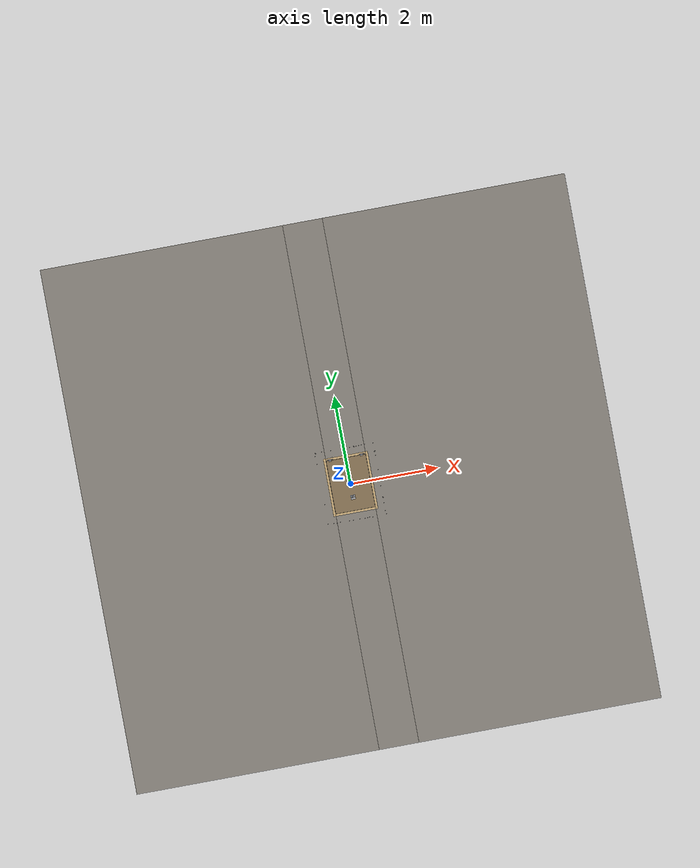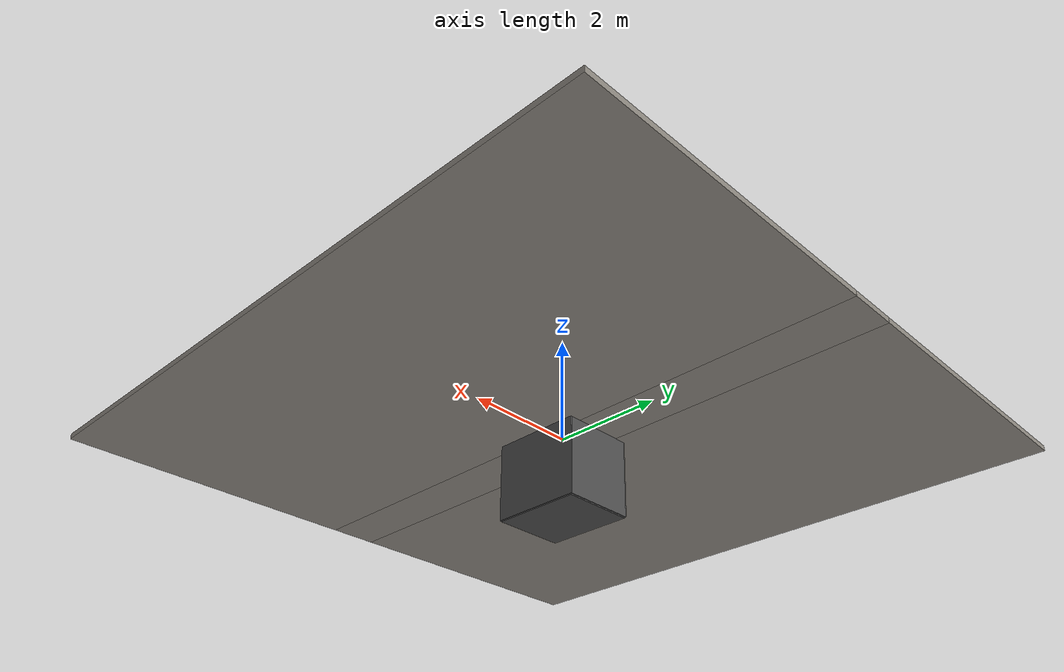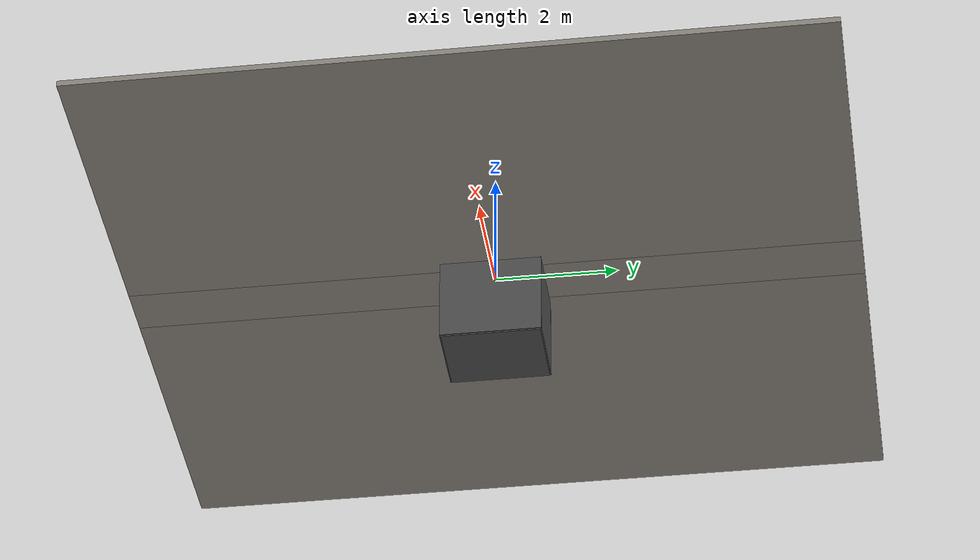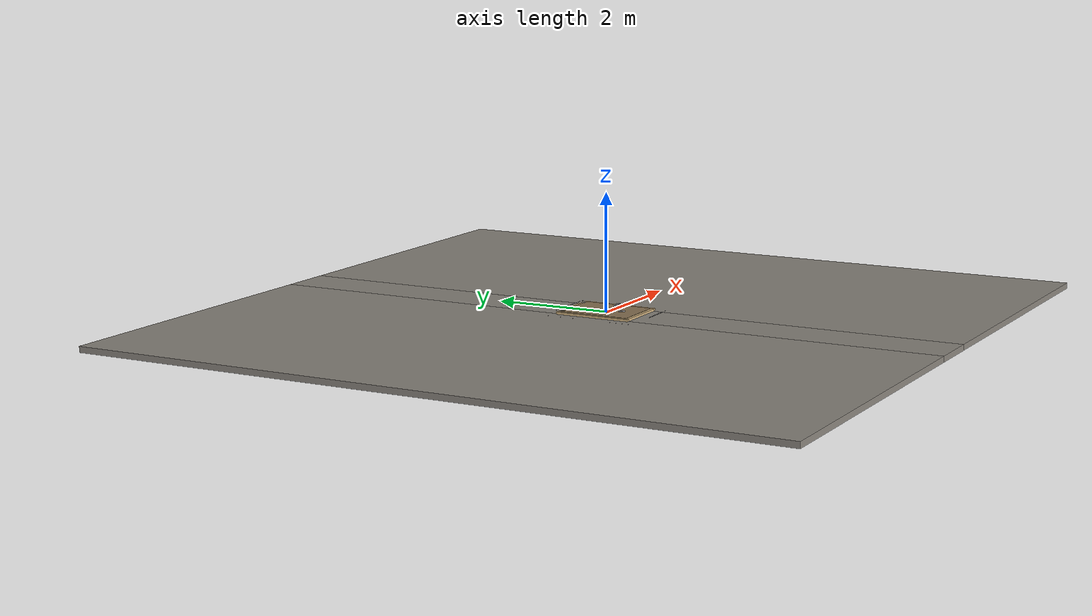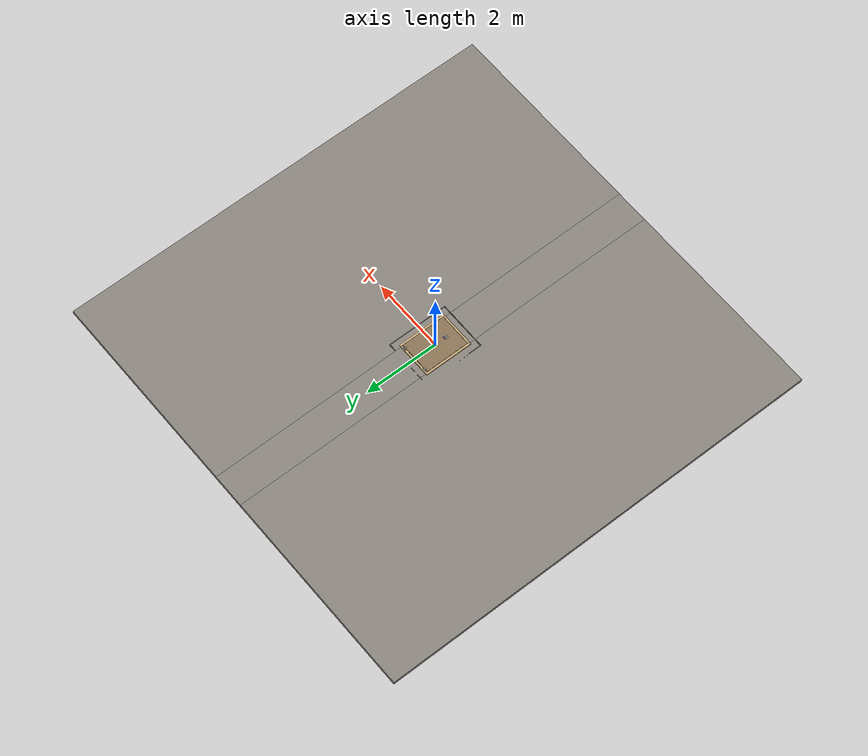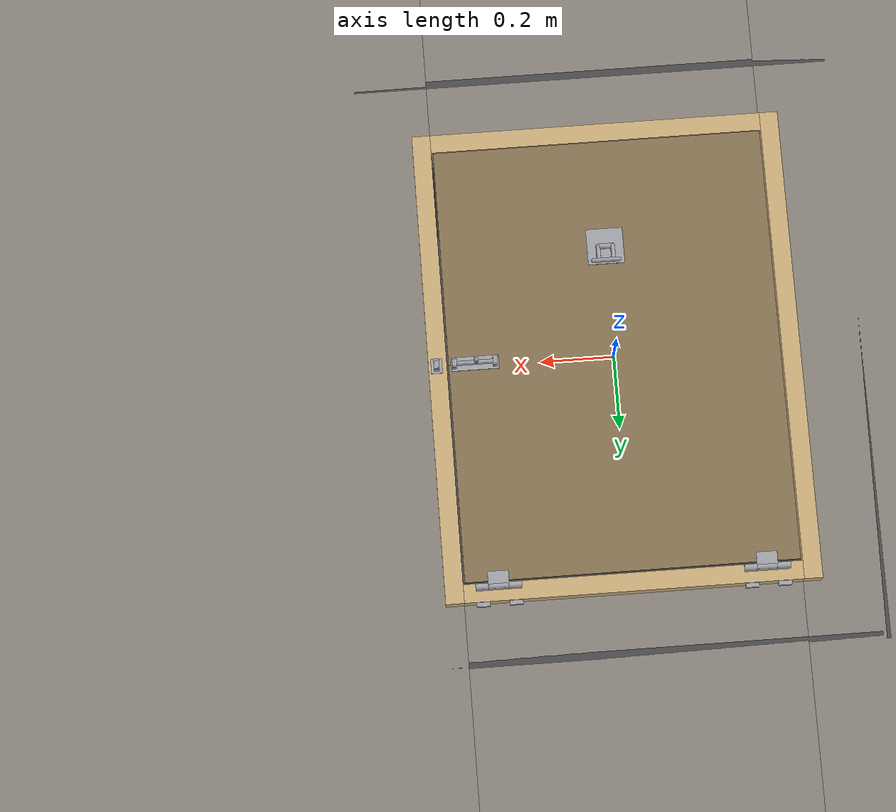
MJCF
<?xml version="1.0" ?>
<mujoco model="db0559_hatch_floor_full">
  <compiler angle="radian" meshdir="../../hardware" texturedir="../../textures" autolimits="true" inertiafromgeom="false"/>
  <option timestep="0.002" integrator="implicitfast" cone="elliptic" impratio="10" noslip_iterations="3">
    <flag multiccd="enable"/>
  </option>
  <size memory="16M"/>
  <default>
    <geom condim="4" solref="0.005 1" solimp="0.95 0.99 0.001"/>
    <joint solreflimit="0.005 1" solimplimit="0.95 0.99 0.001"/>
    <tendon solreflimit="0.005 1"/>
    <equality solref="0.002 1"/>
  </default>
  <visual>
    <headlight ambient="0.4 0.4 0.4" diffuse="0.7 0.7 0.7" specular="0.2 0.2 0.2"/>
    <quality shadowsize="4096"/>
    <map znear="0.01" zfar="60"/>
  </visual>
  <asset>
    <material name="mat_floor" rgba="0.55 0.53 0.5 1" specular="0.2" shininess="0.15" reflectance="0"/>
    <material name="mat_wall" rgba="0.78 0.76 0.7 1" specular="0.2" shininess="0.1" reflectance="0"/>
    <material name="mat_pit" rgba="0.3 0.3 0.3 1" specular="0.2" shininess="0.1" reflectance="0"/>
    <material name="mat_frame" rgba="0.82 0.7 0.5 1" specular="0.2" shininess="0.45" reflectance="0"/>
    <material name="mat_leaf" rgba="0.552 0.463 0.339 1" specular="0.2" shininess="0.4" reflectance="0"/>
    <material name="mat_hinge" rgba="0.65 0.66 0.68 1" specular="0.74" shininess="0.5" reflectance="0.36"/>
    <material name="mat_op_steel_galvanized" rgba="0.65 0.66 0.68 1" specular="0.74" shininess="0.5" reflectance="0.36"/>
    <material name="mat_bolt" rgba="0.65 0.66 0.68 1" specular="0.74" shininess="0.5" reflectance="0.36"/>
    <texture name="skybox" type="skybox" builtin="gradient" rgb1="0.6 0.7 0.85" rgb2="0.9 0.92 0.95" width="256" height="256"/>
  </asset>
  <worldbody>
    <light name="sun" pos="1.5 -2.5 4" dir="-0.3 0.5 -0.8" directional="true" diffuse="0.8 0.8 0.8" specular="0.3 0.3 0.3" castshadow="true"/>
    <light name="fill" pos="-1.5 2.5 3" dir="0.3 -0.5 -0.7" directional="true" diffuse="0.35 0.35 0.4" castshadow="false"/>
    <camera name="robot_view" pos="0 -1.875 1.13" xyaxes="1 0 0 0 0.26963 0.962964" fovy="52"/>
    <camera name="far_view" pos="0 1.875 1.13" xyaxes="-1 0 0 0 -0.26963 0.962964" fovy="52"/>
    <camera name="iso" pos="1.425 -1.575 1.43" xyaxes="0.741536 0.670913 0 -0.242917 0.268487 0.932151" fovy="46"/>
    <camera name="detail_handle" pos="0.35 -0.8125 0.902" xyaxes="0.843661 0.536875 0 -0.426006 0.669439 0.608581" fovy="38"/>
    <geom name="floor_a" type="box" size="2.7725 6 0.05" pos="-3.2275 0 -0.05" material="mat_floor" group="0" contype="1" conaffinity="1" friction="0.6 0.005 0.0001" density="2400"/>
    <geom name="floor_b" type="box" size="2.7725 6 0.05" pos="3.2275 0 -0.05" material="mat_floor" group="0" contype="1" conaffinity="1" friction="0.6 0.005 0.0001" density="2400"/>
    <geom name="floor_c" type="box" size="0.455 2.6975 0.05" pos="0 -3.3025 -0.05" material="mat_floor" group="0" contype="1" conaffinity="1" friction="0.6 0.005 0.0001" density="2400"/>
    <geom name="floor_d" type="box" size="0.455 2.6975 0.05" pos="0 3.3025 -0.05" material="mat_floor" group="0" contype="1" conaffinity="1" friction="0.6 0.005 0.0001" density="2400"/>
    <geom name="pit_floor" type="box" size="0.655 0.805 0.02" pos="0 0 -1.5" material="mat_pit" group="0" contype="1" conaffinity="1" friction="0.6 0.005 0.0001" density="2400"/>
    <geom name="pit_wall_l" type="box" size="0.01 0.825 0.75" pos="-0.665 0 -0.75" material="mat_pit" group="0" contype="1" conaffinity="1" friction="0.6 0.005 0.0001" density="2400"/>
    <geom name="pit_wall_r" type="box" size="0.01 0.825 0.75" pos="0.665 0 -0.75" material="mat_pit" group="0" contype="1" conaffinity="1" friction="0.6 0.005 0.0001" density="2400"/>
    <geom name="pit_wall_n" type="box" size="0.655 0.01 0.75" pos="0 -0.815 -0.75" material="mat_pit" group="0" contype="1" conaffinity="1" friction="0.6 0.005 0.0001" density="2400"/>
    <geom name="pit_wall_f" type="box" size="0.655 0.01 0.75" pos="0 0.815 -0.75" material="mat_pit" group="0" contype="1" conaffinity="1" friction="0.6 0.005 0.0001" density="2400"/>
    <geom name="curb_l" type="box" size="0.025 0.655 0.02" pos="-0.48 0 0.02" material="mat_frame" group="0" contype="1" conaffinity="1" friction="0.6 0.005 0.0001" density="7850"/>
    <geom name="curb_r" type="box" size="0.025 0.655 0.02" pos="0.48 0 0.02" material="mat_frame" group="0" contype="1" conaffinity="1" friction="0.6 0.005 0.0001" density="7850"/>
    <geom name="curb_n" type="box" size="0.455 0.025 0.02" pos="0 -0.63 0.02" material="mat_frame" group="0" contype="1" conaffinity="1" friction="0.6 0.005 0.0001" density="7850"/>
    <geom name="curb_f" type="box" size="0.455 0.025 0.02" pos="0 0.63 0.02" material="mat_frame" group="0" contype="1" conaffinity="1" friction="0.6 0.005 0.0001" density="7850"/>
    <geom name="hatch_hinge_0_curb_n" type="cylinder" size="0.01 0.018" pos="-0.404 0.615 0.04" quat="0.707107 0 0.707107 0" material="mat_hinge" group="1" contype="0" conaffinity="0" density="7850"/>
    <geom name="hatch_hinge_0_curb_strap_n" type="box" size="0.018 0.032 0.005" pos="-0.404 0.635 0.03" material="mat_hinge" group="1" contype="0" conaffinity="0" density="7850"/>
    <geom name="hatch_hinge_0_curb_p" type="cylinder" size="0.01 0.018" pos="-0.316 0.615 0.04" quat="0.707107 0 0.707107 0" material="mat_hinge" group="1" contype="0" conaffinity="0" density="7850"/>
    <geom name="hatch_hinge_0_curb_strap_p" type="box" size="0.018 0.032 0.005" pos="-0.316 0.635 0.03" material="mat_hinge" group="1" contype="0" conaffinity="0" density="7850"/>
    <geom name="hatch_hinge_1_curb_n" type="cylinder" size="0.01 0.018" pos="0.316 0.615 0.04" quat="0.707107 0 0.707107 0" material="mat_hinge" group="1" contype="0" conaffinity="0" density="7850"/>
    <geom name="hatch_hinge_1_curb_strap_n" type="box" size="0.018 0.032 0.005" pos="0.316 0.635 0.03" material="mat_hinge" group="1" contype="0" conaffinity="0" density="7850"/>
    <geom name="hatch_hinge_1_curb_p" type="cylinder" size="0.01 0.018" pos="0.404 0.615 0.04" quat="0.707107 0 0.707107 0" material="mat_hinge" group="1" contype="0" conaffinity="0" density="7850"/>
    <geom name="hatch_hinge_1_curb_strap_p" type="box" size="0.018 0.032 0.005" pos="0.404 0.635 0.03" material="mat_hinge" group="1" contype="0" conaffinity="0" density="7850"/>
    <geom name="hatch_bolt_keeper_leg_n" type="box" size="0.007 0.0025 0.015" pos="0.483 -0.0115 0.055" material="mat_bolt" group="0" contype="1" conaffinity="1" friction="0.6 0.005 0.0001" density="7800"/>
    <geom name="hatch_bolt_keeper_leg_p" type="box" size="0.007 0.0025 0.015" pos="0.483 0.0115 0.055" material="mat_bolt" group="0" contype="1" conaffinity="1" friction="0.6 0.005 0.0001" density="7800"/>
    <geom name="hatch_bolt_keeper_bridge" type="box" size="0.007 0.014 0.0025" pos="0.483 0 0.0675" material="mat_bolt" group="0" contype="1" conaffinity="1" friction="0.6 0.005 0.0001" density="7800"/>
    <geom name="hatch_bolt_keeper_base" type="box" size="0.015 0.02 0.001" pos="0.483 0 0.041" material="mat_bolt" group="1" contype="0" conaffinity="0" density="7800"/>
    <site name="approach_point" pos="0 -1.5 0" quat="1 0 0 0" size="0.05" rgba="0.2 0.9 0.2 0.5" group="4"/>
    <site name="goal_point" pos="0 0 -1" quat="1 0 0 0" size="0.05" rgba="0.2 0.9 0.2 0.5" group="4"/>
    <site name="door_plane_center" pos="0 0 0" quat="1 0 0 0" size="0.02" rgba="0.2 0.9 0.2 0.5" group="4"/>
    <body name="hatch" pos="0 0.605 0.04">
      <inertial pos="0.005556 -0.574707 0.000449" mass="9.28316" quat="0.708086 0.000425 -0.000258 -0.706126" diaginertia="0.660132607 1.223624096 1.883451282"/>
      <joint name="hatch_hinge" type="hinge" axis="-1 0 0" pos="0 0.01 0" limited="true" range="0 1.570796" damping="0.64219" frictionloss="2.945128" armature="0.02"/>
      <geom name="hatch_slab" type="box" size="0.45 0.601 0.006" pos="0 -0.605 0" material="mat_leaf" group="0" contype="1" conaffinity="1" friction="0.6 0.005 0.0001" density="1"/>
      <geom name="hatch_hinge_0" type="cylinder" size="0.01 0.028" pos="-0.36 0.01 0" quat="0.707107 0 0.707107 0" material="mat_hinge" group="1" contype="0" conaffinity="0" density="7850"/>
      <geom name="hatch_hinge_0_strap" type="box" size="0.028 0.023 0.003" pos="-0.36 -0.007 0.005" material="mat_hinge" group="1" contype="0" conaffinity="0" density="7850"/>
      <geom name="hatch_hinge_1" type="cylinder" size="0.01 0.028" pos="0.36 0.01 0" quat="0.707107 0 0.707107 0" material="mat_hinge" group="1" contype="0" conaffinity="0" density="7850"/>
      <geom name="hatch_hinge_1_strap" type="box" size="0.028 0.023 0.003" pos="0.36 -0.007 0.005" material="mat_hinge" group="1" contype="0" conaffinity="0" density="7850"/>
      <geom name="ring_recess" type="box" size="0.05 0.05 0.001" pos="0 -0.9075 0.007" material="mat_op_steel_galvanized" group="1" contype="0" conaffinity="0" density="7800"/>
      <geom name="hatch_bolt_plate" type="box" size="0.064 0.019 0.001" pos="0.378 -0.605 0.007" material="mat_bolt" group="1" contype="0" conaffinity="0" density="7800"/>
      <geom name="hatch_bolt_guide_0_leg_n" type="box" size="0.006 0.002 0.0115" pos="0.434 -0.616 0.0175" material="mat_bolt" group="1" contype="0" conaffinity="0" density="7800"/>
      <geom name="hatch_bolt_guide_0_leg_p" type="box" size="0.006 0.002 0.0115" pos="0.434 -0.594 0.0175" material="mat_bolt" group="1" contype="0" conaffinity="0" density="7800"/>
      <geom name="hatch_bolt_guide_0_bridge" type="box" size="0.006 0.013 0.002" pos="0.434 -0.605 0.027" material="mat_bolt" group="1" contype="0" conaffinity="0" density="7800"/>
      <geom name="hatch_bolt_guide_1_leg_n" type="box" size="0.006 0.002 0.0115" pos="0.324 -0.616 0.0175" material="mat_bolt" group="1" contype="0" conaffinity="0" density="7800"/>
      <geom name="hatch_bolt_guide_1_leg_p" type="box" size="0.006 0.002 0.0115" pos="0.324 -0.594 0.0175" material="mat_bolt" group="1" contype="0" conaffinity="0" density="7800"/>
      <geom name="hatch_bolt_guide_1_bridge" type="box" size="0.006 0.013 0.002" pos="0.324 -0.605 0.027" material="mat_bolt" group="1" contype="0" conaffinity="0" density="7800"/>
      <body name="ring" pos="0 -0.9075 0.006">
        <inertial pos="0 0.019982 0.002997" mass="0.2225" quat="-0.058307 0.998299 0 0" diaginertia="0.000076951 0.000083485 0.000154999"/>
        <joint name="ring_hinge" type="hinge" axis="1 0 0" limited="true" range="0 1.392122" damping="0.003476" armature="0.0001"/>
        <geom name="ring_geom" type="capsule" size="0.006 0.035" pos="0 0.04 0.006" quat="0.707107 0 0.707107 0" material="mat_op_steel_galvanized" group="0" contype="1" conaffinity="1" friction="0.6 0.005 0.0001" density="7800"/>
        <geom name="ring_knuckle" type="cylinder" size="0.008 0.022" pos="0 0 0" quat="0.707107 0 0.707107 0" material="mat_op_steel_galvanized" group="1" contype="0" conaffinity="0" density="7800"/>
        <geom name="ring_arm_n" type="capsule" size="0.006 0.02" pos="-0.02 0.02 0.003" quat="0.707107 -0.707107 0 0" material="mat_op_steel_galvanized" group="1" contype="0" conaffinity="0" density="7800"/>
        <geom name="ring_arm_p" type="capsule" size="0.006 0.02" pos="0.02 0.02 0.003" quat="0.707107 -0.707107 0 0" material="mat_op_steel_galvanized" group="1" contype="0" conaffinity="0" density="7800"/>
        <site name="grip_ring" pos="0 0.04 0.006" quat="1 0 0 0" size="0.01" rgba="0.2 0.9 0.2 0.5" group="4"/>
      </body>
      <body name="hatch_bolt" pos="0.45 -0.605 0.016">
        <inertial pos="-0.066255 0 0.004246" mass="0.12954" quat="0.706926 0.706926 0.016003 -0.016003" diaginertia="0.000013355 0.000119753 0.0001309"/>
        <joint name="hatch_bolt_slide" type="slide" axis="-1 0 0" limited="true" range="0 0.04" damping="1" frictionloss="1" armature="0.1" ref="0.04"/>
        <geom name="hatch_bolt_rod" type="capsule" size="0.006 0.054" pos="-0.064 0 0" quat="0.707107 0 0.707107 0" material="mat_bolt" group="0" contype="1" conaffinity="1" friction="0.6 0.005 0.0001" density="7850"/>
        <geom name="hatch_bolt_knob" type="capsule" size="0.005 0.01" pos="-0.075 0 0.015" material="mat_bolt" group="0" contype="1" conaffinity="1" friction="0.6 0.005 0.0001" density="7850"/>
        <geom name="hatch_bolt_knob_end" type="sphere" size="0.00675" pos="-0.075 0 0.03" material="mat_bolt" group="1" contype="0" conaffinity="0" density="7850"/>
        <site name="hatch_bolt_grip" pos="-0.075 0 0.034" quat="1 0 0 0" size="0.012" rgba="0.2 0.9 0.2 0.5" group="4"/>
      </body>
    </body>
  </worldbody>
  <sensor>
    <jointpos name="hatch_hinge_pos" joint="hatch_hinge"/>
    <jointvel name="hatch_hinge_vel" joint="hatch_hinge"/>
    <jointpos name="ring_hinge_pos" joint="ring_hinge"/>
    <jointvel name="ring_hinge_vel" joint="ring_hinge"/>
    <jointpos name="hatch_bolt_slide_pos" joint="hatch_bolt_slide"/>
    <jointvel name="hatch_bolt_slide_vel" joint="hatch_bolt_slide"/>
  </sensor>
</mujoco>
